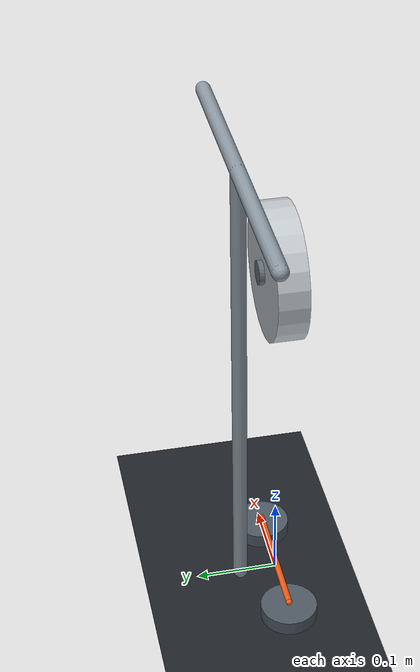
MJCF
<mujoco model="cpho_2018_problem3_massive_rope">
  <compiler autolimits="true" angle="radian" />
  <option timestep="0.0002" gravity="0 0 0" integrator="Euler" />
  <statistic center="0 0 0.27" extent="0.62" />

  <!-- Symbolic problem parameters instantiated for the numerical benchmark. -->
  <custom>
    <numeric name="rope_linear_density" data="0.25" />
    <numeric name="pulley_radius" data="0.08" />
    <numeric name="axis_height" data="0.45" />
    <numeric name="kinetic_friction" data="0.25" />
    <numeric name="gravity_acceleration" data="9.81" />
    <numeric name="sliding_case_omega" data="28" />
    <numeric name="sticking_case_omega" data="14" />
  </custom>

  <visual>
    <global offwidth="1280" offheight="720" />
    <quality shadowsize="4096" />
    <map znear="0.01" />
    <rgba haze="0.12 0.14 0.16 1" />
  </visual>

  <asset>
    <material name="frame" rgba="0.55 0.60 0.64 1" />
    <material name="pulley" rgba="0.76 0.78 0.80 1" />
    <material name="rope" rgba="0.95 0.36 0.08 1" />
    <material name="pile" rgba="0.30 0.34 0.38 1" />
  </asset>

  <worldbody>
    <light name="key" pos="-0.35 -0.8 0.9" dir="0.25 0.75 -0.7" />
    <camera name="overview" pos="0 -1.05 0.30" xyaxes="1 0 0 0 0 1" />

    <geom name="ground" type="plane" pos="0 0 -0.012"
          size="0.32 0.24 0.01" rgba="0.12 0.14 0.16 1" />
    <geom name="support_post" type="capsule"
          fromto="0 0.045 0 0 0.045 0.58" size="0.009"
          material="frame" contype="0" conaffinity="0" />
    <geom name="support_beam" type="capsule"
          fromto="-0.20 0.045 0.58 0.20 0.045 0.58" size="0.009"
          material="frame" contype="0" conaffinity="0" />
    <geom name="left_rope_pile" type="cylinder" pos="-0.08 0 0"
          size="0.035 0.009" material="pile" contype="0" conaffinity="0" />
    <geom name="right_rope_pile" type="cylinder" pos="0.08 0 0"
          size="0.035 0.009" material="pile" contype="0" conaffinity="0" />

    <site name="left_ground_tangent" pos="-0.08 0 0.012"
          size="0.004" rgba="0.95 0.36 0.08 1" />
    <site name="right_ground_tangent" pos="0.08 0 0.012"
          size="0.004" rgba="0.95 0.36 0.08 1" />
    <site name="upper_wrap_side" pos="0 0 0.55"
          size="0.0001" rgba="1 0.85 0.10 0" />

    <body name="prescribed_pulley" pos="0 0 0.45">
      <joint name="pulley_hinge" type="hinge" axis="0 1 0"
             damping="0" frictionloss="0" />
      <geom name="drive_pulley" type="cylinder"
            euler="1.57079632679 0 0" size="0.08 0.018"
            mass="0.20" material="pulley" contype="0" conaffinity="0" />
      <geom name="pulley_hub" type="cylinder"
            euler="1.57079632679 0 0" size="0.014 0.024"
            density="0" rgba="0.40 0.43 0.46 1"
            contype="0" conaffinity="0" />
      <geom name="pulley_spoke_a" type="capsule"
            fromto="-0.064 0 0 0.064 0 0" size="0.0035"
            density="0" rgba="0.22 0.24 0.26 1"
            contype="0" conaffinity="0" />
      <geom name="pulley_spoke_b" type="capsule"
            fromto="0 0 -0.064 0 0 0.064" size="0.0035"
            density="0" rgba="0.22 0.24 0.26 1"
            contype="0" conaffinity="0" />
    </body>

    <!-- Unit generalized mass. The analysis applies the official continuum
         acceleration to this transport coordinate through qfrc_applied. -->
    <body name="rope_transport_state" pos="0 0 -0.10">
      <joint name="rope_transport" type="slide" axis="1 0 0"
             damping="0" frictionloss="0" />
      <inertial pos="0 0 0" mass="1"
                diaginertia="0.001 0.001 0.001" />
    </body>
  </worldbody>

  <!-- Visual-only native route. Physics is supplied by the official massive-
       rope continuum equation in scripts/analyze_cpho_2018_problem3.py. -->
  <tendon>
    <spatial name="massive_rope_visual" limited="false" width="0.004"
             rgba="0.95 0.36 0.08 1">
      <site site="left_ground_tangent" />
      <geom geom="drive_pulley" sidesite="upper_wrap_side" />
      <site site="right_ground_tangent" />
    </spatial>
  </tendon>

  <sensor>
    <jointpos name="rope_transport_distance" joint="rope_transport" />
    <jointvel name="rope_speed" joint="rope_transport" />
    <jointpos name="pulley_angle" joint="pulley_hinge" />
    <jointvel name="pulley_angular_velocity" joint="pulley_hinge" />
  </sensor>
</mujoco>
